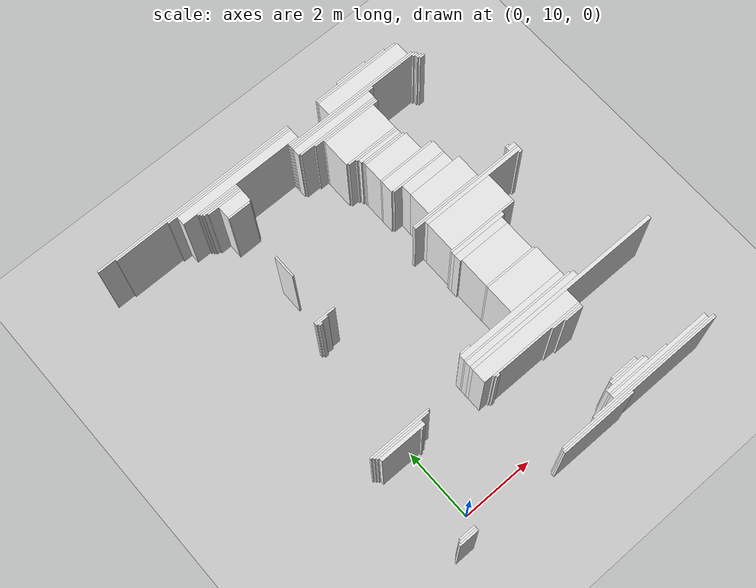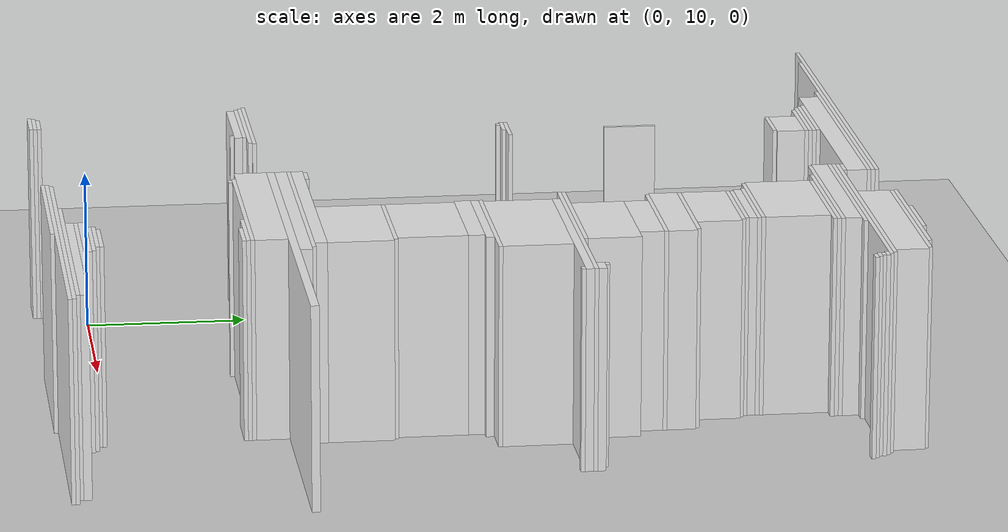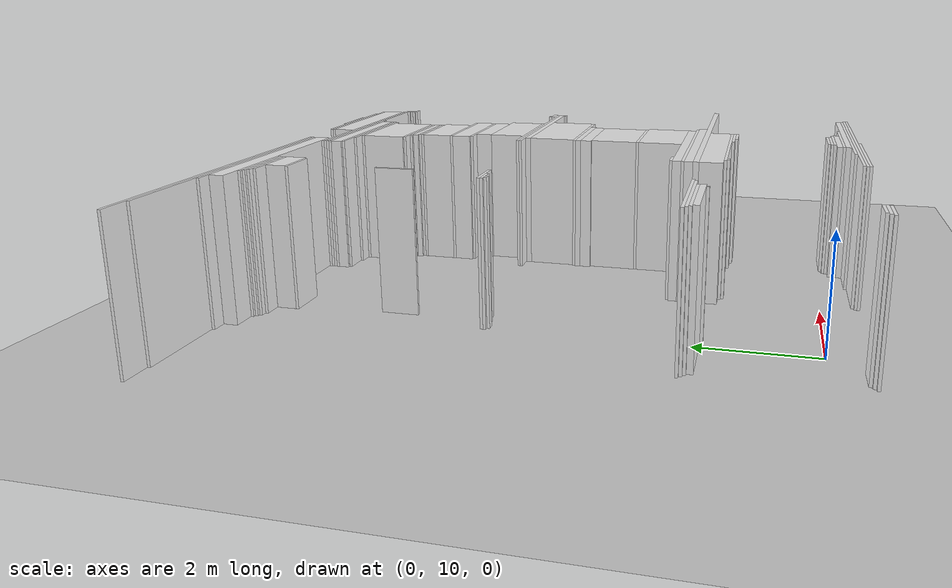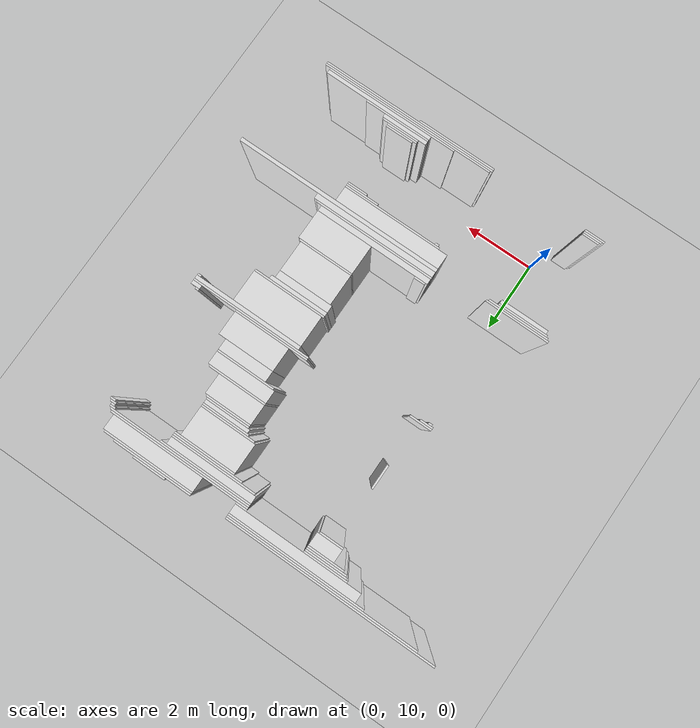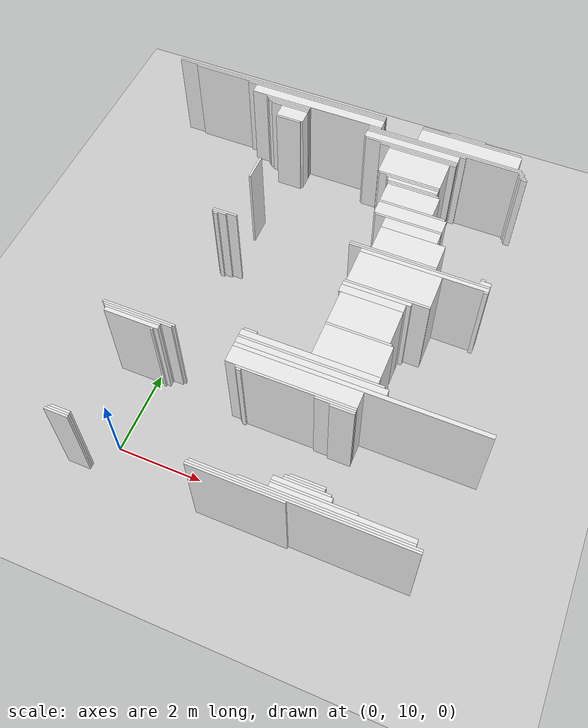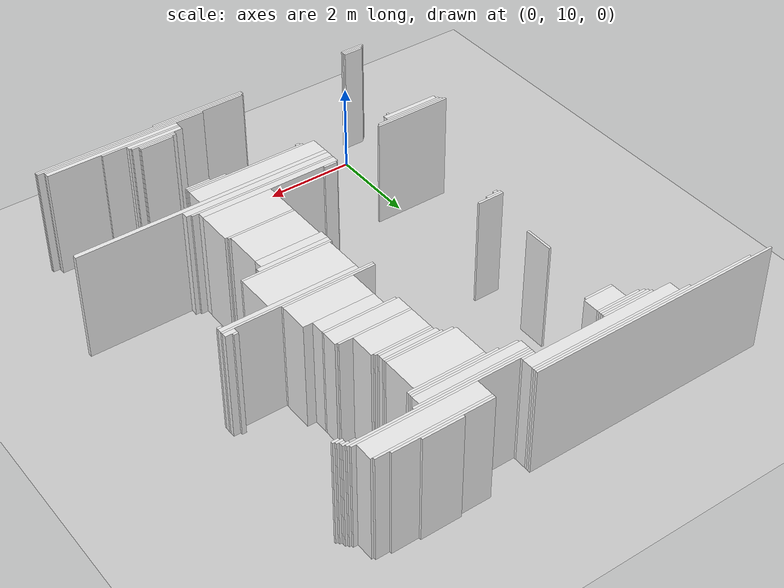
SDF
<sdf version="1.7">
 <world name="occupancy_map_world">
  <model name="ground_plane">
   <static>true</static>
   <link name="link">
    <collision name="collision">
     <geometry><plane><normal>0 0 1</normal><size>32.46 49.62000000000001</size></plane></geometry>
    </collision>
    <visual name="visual">
     <geometry><plane><normal>0 0 1</normal><size>32.46 49.62000000000001</size></plane></geometry>
     <material>
      <script><uri>file://media/materials/scripts/gazebo.material</uri><name>Gazebo/Grey</name></script>
     </material>
    </visual>
   </link>
  </model>
  <model name="wall_12">
   <static>true</static>
   <pose>4.825000000000003 19.75 1.25 0 0 0.0</pose>
   <link name="link">
    <collision name="collision"><geometry><box><size>0.9 0.05 2.5</size></box></geometry></collision>
    <visual name="visual">
     <geometry><box><size>0.9 0.05 2.5</size></box></geometry>
     <material>
      <script><uri>file://media/materials/scripts/gazebo.material</uri><name>Gazebo/White</name></script>
     </material>
    </visual>
   </link>
  </model>
  <model name="wall_14">
   <static>true</static>
   <pose>4.775000000000002 19.700000000000003 1.25 0 0 0.0</pose>
   <link name="link">
    <collision name="collision"><geometry><box><size>2.2 0.05 2.5</size></box></geometry></collision>
    <visual name="visual">
     <geometry><box><size>2.2 0.05 2.5</size></box></geometry>
     <material>
      <script><uri>file://media/materials/scripts/gazebo.material</uri><name>Gazebo/White</name></script>
     </material>
    </visual>
   </link>
  </model>
  <model name="wall_16">
   <static>true</static>
   <pose>-0.14999999999999858 19.650000000000006 1.25 0 0 0.0</pose>
   <link name="link">
    <collision name="collision"><geometry><box><size>5.75 0.05 2.5</size></box></geometry></collision>
    <visual name="visual">
     <geometry><box><size>5.75 0.05 2.5</size></box></geometry>
     <material>
      <script><uri>file://media/materials/scripts/gazebo.material</uri><name>Gazebo/White</name></script>
     </material>
    </visual>
   </link>
  </model>
  <model name="wall_17">
   <static>true</static>
   <pose>4.925000000000004 19.650000000000006 1.25 0 0 0.0</pose>
   <link name="link">
    <collision name="collision"><geometry><box><size>2.5 0.05 2.5</size></box></geometry></collision>
    <visual name="visual">
     <geometry><box><size>2.5 0.05 2.5</size></box></geometry>
     <material>
      <script><uri>file://media/materials/scripts/gazebo.material</uri><name>Gazebo/White</name></script>
     </material>
    </visual>
   </link>
  </model>
  <model name="wall_19">
   <static>true</static>
   <pose>0.10000000000000142 19.6 1.25 0 0 0.0</pose>
   <link name="link">
    <collision name="collision"><geometry><box><size>5.25 0.05 2.5</size></box></geometry></collision>
    <visual name="visual">
     <geometry><box><size>5.25 0.05 2.5</size></box></geometry>
     <material>
      <script><uri>file://media/materials/scripts/gazebo.material</uri><name>Gazebo/White</name></script>
     </material>
    </visual>
   </link>
  </model>
  <model name="wall_20">
   <static>true</static>
   <pose>4.950000000000003 19.425000000000004 1.25 0 0 0.0</pose>
   <link name="link">
    <collision name="collision">
     <geometry><box><size>2.5500000000000003 0.4 2.5</size></box></geometry>
    </collision>
    <visual name="visual">
     <geometry><box><size>2.5500000000000003 0.4 2.5</size></box></geometry>
     <material>
      <script><uri>file://media/materials/scripts/gazebo.material</uri><name>Gazebo/White</name></script>
     </material>
    </visual>
   </link>
  </model>
  <model name="wall_23">
   <static>true</static>
   <pose>0.8500000000000014 19.550000000000004 1.25 0 0 0.0</pose>
   <link name="link">
    <collision name="collision"><geometry><box><size>3.75 0.05 2.5</size></box></geometry></collision>
    <visual name="visual">
     <geometry><box><size>3.75 0.05 2.5</size></box></geometry>
     <material>
      <script><uri>file://media/materials/scripts/gazebo.material</uri><name>Gazebo/White</name></script>
     </material>
    </visual>
   </link>
  </model>
  <model name="wall_25">
   <static>true</static>
   <pose>0.9750000000000014 19.400000000000006 1.25 0 0 0.0</pose>
   <link name="link">
    <collision name="collision"><geometry><box><size>3.5 0.25 2.5</size></box></geometry></collision>
    <visual name="visual">
     <geometry><box><size>3.5 0.25 2.5</size></box></geometry>
     <material>
      <script><uri>file://media/materials/scripts/gazebo.material</uri><name>Gazebo/White</name></script>
     </material>
    </visual>
   </link>
  </model>
  <model name="wall_44">
   <static>true</static>
   <pose>0.22500000000000142 19.25 1.25 0 0 0.0</pose>
   <link name="link">
    <collision name="collision">
     <geometry><box><size>1.2000000000000002 0.05 2.5</size></box></geometry>
    </collision>
    <visual name="visual">
     <geometry><box><size>1.2000000000000002 0.05 2.5</size></box></geometry>
     <material>
      <script><uri>file://media/materials/scripts/gazebo.material</uri><name>Gazebo/White</name></script>
     </material>
    </visual>
   </link>
  </model>
  <model name="wall_45">
   <static>true</static>
   <pose>2.575000000000003 19.25 1.25 0 0 0.0</pose>
   <link name="link">
    <collision name="collision">
     <geometry><box><size>0.30000000000000004 0.05 2.5</size></box></geometry>
    </collision>
    <visual name="visual">
     <geometry><box><size>0.30000000000000004 0.05 2.5</size></box></geometry>
     <material>
      <script><uri>file://media/materials/scripts/gazebo.material</uri><name>Gazebo/White</name></script>
     </material>
    </visual>
   </link>
  </model>
  <model name="wall_47">
   <static>true</static>
   <pose>0.25000000000000355 19.200000000000003 1.25 0 0 0.0</pose>
   <link name="link">
    <collision name="collision">
     <geometry><box><size>1.1500000000000001 0.05 2.5</size></box></geometry>
    </collision>
    <visual name="visual">
     <geometry><box><size>1.1500000000000001 0.05 2.5</size></box></geometry>
     <material>
      <script><uri>file://media/materials/scripts/gazebo.material</uri><name>Gazebo/White</name></script>
     </material>
    </visual>
   </link>
  </model>
  <model name="wall_48">
   <static>true</static>
   <pose>4.3750000000000036 19.200000000000003 1.25 0 0 0.0</pose>
   <link name="link">
    <collision name="collision">
     <geometry><box><size>3.9000000000000004 0.05 2.5</size></box></geometry>
    </collision>
    <visual name="visual">
     <geometry><box><size>3.9000000000000004 0.05 2.5</size></box></geometry>
     <material>
      <script><uri>file://media/materials/scripts/gazebo.material</uri><name>Gazebo/White</name></script>
     </material>
    </visual>
   </link>
  </model>
  <model name="wall_50">
   <static>true</static>
   <pose>0.27500000000000213 19.150000000000006 1.25 0 0 0.0</pose>
   <link name="link">
    <collision name="collision"><geometry><box><size>1.1 0.05 2.5</size></box></geometry></collision>
    <visual name="visual">
     <geometry><box><size>1.1 0.05 2.5</size></box></geometry>
     <material>
      <script><uri>file://media/materials/scripts/gazebo.material</uri><name>Gazebo/White</name></script>
     </material>
    </visual>
   </link>
  </model>
  <model name="wall_51">
   <static>true</static>
   <pose>4.400000000000002 19.150000000000006 1.25 0 0 0.0</pose>
   <link name="link">
    <collision name="collision"><geometry><box><size>3.95 0.05 2.5</size></box></geometry></collision>
    <visual name="visual">
     <geometry><box><size>3.95 0.05 2.5</size></box></geometry>
     <material>
      <script><uri>file://media/materials/scripts/gazebo.material</uri><name>Gazebo/White</name></script>
     </material>
    </visual>
   </link>
  </model>
  <model name="wall_53">
   <static>true</static>
   <pose>0.32500000000000284 19.1 1.25 0 0 0.0</pose>
   <link name="link">
    <collision name="collision"><geometry><box><size>1.0 0.05 2.5</size></box></geometry></collision>
    <visual name="visual">
     <geometry><box><size>1.0 0.05 2.5</size></box></geometry>
     <material>
      <script><uri>file://media/materials/scripts/gazebo.material</uri><name>Gazebo/White</name></script>
     </material>
    </visual>
   </link>
  </model>
  <model name="wall_54">
   <static>true</static>
   <pose>3.700000000000003 19.1 1.25 0 0 0.0</pose>
   <link name="link">
    <collision name="collision">
     <geometry><box><size>2.5500000000000003 0.05 2.5</size></box></geometry>
    </collision>
    <visual name="visual">
     <geometry><box><size>2.5500000000000003 0.05 2.5</size></box></geometry>
     <material>
      <script><uri>file://media/materials/scripts/gazebo.material</uri><name>Gazebo/White</name></script>
     </material>
    </visual>
   </link>
  </model>
  <model name="wall_55">
   <static>true</static>
   <pose>6.350000000000001 19.1 1.25 0 0 0.0</pose>
   <link name="link">
    <collision name="collision">
     <geometry><box><size>0.15000000000000002 0.05 2.5</size></box></geometry>
    </collision>
    <visual name="visual">
     <geometry><box><size>0.15000000000000002 0.05 2.5</size></box></geometry>
     <material>
      <script><uri>file://media/materials/scripts/gazebo.material</uri><name>Gazebo/White</name></script>
     </material>
    </visual>
   </link>
  </model>
  <model name="wall_56">
   <static>true</static>
   <pose>0.4750000000000014 18.900000000000006 1.25 0 0 0.0</pose>
   <link name="link">
    <collision name="collision">
     <geometry><box><size>0.7000000000000001 0.35000000000000003 2.5</size></box></geometry>
    </collision>
    <visual name="visual">
     <geometry><box><size>0.7000000000000001 0.35000000000000003 2.5</size></box></geometry>
     <material>
      <script><uri>file://media/materials/scripts/gazebo.material</uri><name>Gazebo/White</name></script>
     </material>
    </visual>
   </link>
  </model>
  <model name="wall_57">
   <static>true</static>
   <pose>3.6250000000000036 18.975 1.25 0 0 0.0</pose>
   <link name="link">
    <collision name="collision">
     <geometry><box><size>2.4000000000000004 0.2 2.5</size></box></geometry>
    </collision>
    <visual name="visual">
     <geometry><box><size>2.4000000000000004 0.2 2.5</size></box></geometry>
     <material>
      <script><uri>file://media/materials/scripts/gazebo.material</uri><name>Gazebo/White</name></script>
     </material>
    </visual>
   </link>
  </model>
  <model name="wall_58">
   <static>true</static>
   <pose>6.3750000000000036 19.050000000000004 1.25 0 0 0.0</pose>
   <link name="link">
    <collision name="collision"><geometry><box><size>0.1 0.05 2.5</size></box></geometry></collision>
    <visual name="visual">
     <geometry><box><size>0.1 0.05 2.5</size></box></geometry>
     <material>
      <script><uri>file://media/materials/scripts/gazebo.material</uri><name>Gazebo/White</name></script>
     </material>
    </visual>
   </link>
  </model>
  <model name="wall_59">
   <static>true</static>
   <pose>6.3750000000000036 15.75 1.25 0 0 0.0</pose>
   <link name="link">
    <collision name="collision"><geometry><box><size>0.1 0.05 2.5</size></box></geometry></collision>
    <visual name="visual">
     <geometry><box><size>0.1 0.05 2.5</size></box></geometry>
     <material>
      <script><uri>file://media/materials/scripts/gazebo.material</uri><name>Gazebo/White</name></script>
     </material>
    </visual>
   </link>
  </model>
  <model name="wall_60">
   <static>true</static>
   <pose>6.400000000000002 19.0 1.25 0 0 0.0</pose>
   <link name="link">
    <collision name="collision">
     <geometry><box><size>0.15000000000000002 0.05 2.5</size></box></geometry>
    </collision>
    <visual name="visual">
     <geometry><box><size>0.15000000000000002 0.05 2.5</size></box></geometry>
     <material>
      <script><uri>file://media/materials/scripts/gazebo.material</uri><name>Gazebo/White</name></script>
     </material>
    </visual>
   </link>
  </model>
  <model name="wall_62">
   <static>true</static>
   <pose>6.450000000000003 18.950000000000003 1.25 0 0 0.0</pose>
   <link name="link">
    <collision name="collision">
     <geometry><box><size>0.15000000000000002 0.05 2.5</size></box></geometry>
    </collision>
    <visual name="visual">
     <geometry><box><size>0.15000000000000002 0.05 2.5</size></box></geometry>
     <material>
      <script><uri>file://media/materials/scripts/gazebo.material</uri><name>Gazebo/White</name></script>
     </material>
    </visual>
   </link>
  </model>
  <model name="wall_64">
   <static>true</static>
   <pose>3.650000000000002 18.85 1.25 0 0 0.0</pose>
   <link name="link">
    <collision name="collision"><geometry><box><size>2.35 0.05 2.5</size></box></geometry></collision>
    <visual name="visual">
     <geometry><box><size>2.35 0.05 2.5</size></box></geometry>
     <material>
      <script><uri>file://media/materials/scripts/gazebo.material</uri><name>Gazebo/White</name></script>
     </material>
    </visual>
   </link>
  </model>
  <model name="wall_66">
   <static>true</static>
   <pose>3.8500000000000014 18.800000000000004 1.25 0 0 0.0</pose>
   <link name="link">
    <collision name="collision">
     <geometry><box><size>1.9500000000000002 0.05 2.5</size></box></geometry>
    </collision>
    <visual name="visual">
     <geometry><box><size>1.9500000000000002 0.05 2.5</size></box></geometry>
     <material>
      <script><uri>file://media/materials/scripts/gazebo.material</uri><name>Gazebo/White</name></script>
     </material>
    </visual>
   </link>
  </model>
  <model name="wall_68">
   <static>true</static>
   <pose>3.9750000000000014 18.75 1.25 0 0 0.0</pose>
   <link name="link">
    <collision name="collision">
     <geometry><box><size>1.7000000000000002 0.05 2.5</size></box></geometry>
    </collision>
    <visual name="visual">
     <geometry><box><size>1.7000000000000002 0.05 2.5</size></box></geometry>
     <material>
      <script><uri>file://media/materials/scripts/gazebo.material</uri><name>Gazebo/White</name></script>
     </material>
    </visual>
   </link>
  </model>
  <model name="wall_70">
   <static>true</static>
   <pose>0.45000000000000284 18.700000000000003 1.25 0 0 0.0</pose>
   <link name="link">
    <collision name="collision"><geometry><box><size>0.65 0.05 2.5</size></box></geometry></collision>
    <visual name="visual">
     <geometry><box><size>0.65 0.05 2.5</size></box></geometry>
     <material>
      <script><uri>file://media/materials/scripts/gazebo.material</uri><name>Gazebo/White</name></script>
     </material>
    </visual>
   </link>
  </model>
  <model name="wall_71">
   <static>true</static>
   <pose>3.900000000000002 18.325000000000003 1.25 0 0 0.0</pose>
   <link name="link">
    <collision name="collision"><geometry><box><size>1.55 0.8 2.5</size></box></geometry></collision>
    <visual name="visual">
     <geometry><box><size>1.55 0.8 2.5</size></box></geometry>
     <material>
      <script><uri>file://media/materials/scripts/gazebo.material</uri><name>Gazebo/White</name></script>
     </material>
    </visual>
   </link>
  </model>
  <model name="wall_88">
   <static>true</static>
   <pose>3.9250000000000043 17.900000000000006 1.25 0 0 0.0</pose>
   <link name="link">
    <collision name="collision"><geometry><box><size>1.5 0.05 2.5</size></box></geometry></collision>
    <visual name="visual">
     <geometry><box><size>1.5 0.05 2.5</size></box></geometry>
     <material>
      <script><uri>file://media/materials/scripts/gazebo.material</uri><name>Gazebo/White</name></script>
     </material>
    </visual>
   </link>
  </model>
  <model name="wall_91">
   <static>true</static>
   <pose>4.025000000000002 17.85 1.25 0 0 0.0</pose>
   <link name="link">
    <collision name="collision"><geometry><box><size>1.3 0.05 2.5</size></box></geometry></collision>
    <visual name="visual">
     <geometry><box><size>1.3 0.05 2.5</size></box></geometry>
     <material>
      <script><uri>file://media/materials/scripts/gazebo.material</uri><name>Gazebo/White</name></script>
     </material>
    </visual>
   </link>
  </model>
  <model name="wall_92">
   <static>true</static>
   <pose>4.050000000000004 17.775000000000006 1.25 0 0 0.0</pose>
   <link name="link">
    <collision name="collision"><geometry><box><size>1.25 0.1 2.5</size></box></geometry></collision>
    <visual name="visual">
     <geometry><box><size>1.25 0.1 2.5</size></box></geometry>
     <material>
      <script><uri>file://media/materials/scripts/gazebo.material</uri><name>Gazebo/White</name></script>
     </material>
    </visual>
   </link>
  </model>
  <model name="wall_93">
   <static>true</static>
   <pose>4.075000000000003 17.700000000000003 1.25 0 0 0.0</pose>
   <link name="link">
    <collision name="collision">
     <geometry><box><size>1.2000000000000002 0.05 2.5</size></box></geometry>
    </collision>
    <visual name="visual">
     <geometry><box><size>1.2000000000000002 0.05 2.5</size></box></geometry>
     <material>
      <script><uri>file://media/materials/scripts/gazebo.material</uri><name>Gazebo/White</name></script>
     </material>
    </visual>
   </link>
  </model>
  <model name="wall_94">
   <static>true</static>
   <pose>4.100000000000001 17.650000000000006 1.25 0 0 0.0</pose>
   <link name="link">
    <collision name="collision"><geometry><box><size>1.25 0.05 2.5</size></box></geometry></collision>
    <visual name="visual">
     <geometry><box><size>1.25 0.05 2.5</size></box></geometry>
     <material>
      <script><uri>file://media/materials/scripts/gazebo.material</uri><name>Gazebo/White</name></script>
     </material>
    </visual>
   </link>
  </model>
  <model name="wall_96">
   <static>true</static>
   <pose>4.1250000000000036 17.35 1.25 0 0 0.0</pose>
   <link name="link">
    <collision name="collision"><geometry><box><size>1.3 0.55 2.5</size></box></geometry></collision>
    <visual name="visual">
     <geometry><box><size>1.3 0.55 2.5</size></box></geometry>
     <material>
      <script><uri>file://media/materials/scripts/gazebo.material</uri><name>Gazebo/White</name></script>
     </material>
    </visual>
   </link>
  </model>
  <model name="wall_100">
   <static>true</static>
   <pose>0.3500000000000014 16.9 1.25 0 0 0.0</pose>
   <link name="link">
    <collision name="collision"><geometry><box><size>0.05 0.65 2.5</size></box></geometry></collision>
    <visual name="visual">
     <geometry><box><size>0.05 0.65 2.5</size></box></geometry>
     <material>
      <script><uri>file://media/materials/scripts/gazebo.material</uri><name>Gazebo/White</name></script>
     </material>
    </visual>
   </link>
  </model>
  <model name="wall_104">
   <static>true</static>
   <pose>4.275000000000002 17.050000000000004 1.25 0 0 0.0</pose>
   <link name="link">
    <collision name="collision"><geometry><box><size>1.6 0.05 2.5</size></box></geometry></collision>
    <visual name="visual">
     <geometry><box><size>1.6 0.05 2.5</size></box></geometry>
     <material>
      <script><uri>file://media/materials/scripts/gazebo.material</uri><name>Gazebo/White</name></script>
     </material>
    </visual>
   </link>
  </model>
  <model name="wall_106">
   <static>true</static>
   <pose>4.300000000000004 16.85 1.25 0 0 0.0</pose>
   <link name="link">
    <collision name="collision">
     <geometry><box><size>1.6500000000000001 0.35000000000000003 2.5</size></box></geometry>
    </collision>
    <visual name="visual">
     <geometry><box><size>1.6500000000000001 0.35000000000000003 2.5</size></box></geometry>
     <material>
      <script><uri>file://media/materials/scripts/gazebo.material</uri><name>Gazebo/White</name></script>
     </material>
    </visual>
   </link>
  </model>
  <model name="wall_118">
   <static>true</static>
   <pose>4.325000000000003 16.65 1.25 0 0 0.0</pose>
   <link name="link">
    <collision name="collision"><geometry><box><size>1.6 0.05 2.5</size></box></geometry></collision>
    <visual name="visual">
     <geometry><box><size>1.6 0.05 2.5</size></box></geometry>
     <material>
      <script><uri>file://media/materials/scripts/gazebo.material</uri><name>Gazebo/White</name></script>
     </material>
    </visual>
   </link>
  </model>
  <model name="wall_119">
   <static>true</static>
   <pose>4.325000000000003 14.524999999999999 1.25 0 0 0.0</pose>
   <link name="link">
    <collision name="collision"><geometry><box><size>1.6 0.1 2.5</size></box></geometry></collision>
    <visual name="visual">
     <geometry><box><size>1.6 0.1 2.5</size></box></geometry>
     <material>
      <script><uri>file://media/materials/scripts/gazebo.material</uri><name>Gazebo/White</name></script>
     </material>
    </visual>
   </link>
  </model>
  <model name="wall_121">
   <static>true</static>
   <pose>4.450000000000003 16.475 1.25 0 0 0.0</pose>
   <link name="link">
    <collision name="collision">
     <geometry><box><size>1.35 0.30000000000000004 2.5</size></box></geometry>
    </collision>
    <visual name="visual">
     <geometry><box><size>1.35 0.30000000000000004 2.5</size></box></geometry>
     <material>
      <script><uri>file://media/materials/scripts/gazebo.material</uri><name>Gazebo/White</name></script>
     </material>
    </visual>
   </link>
  </model>
  <model name="wall_126">
   <static>true</static>
   <pose>4.550000000000004 16.0 1.25 0 0 0.0</pose>
   <link name="link">
    <collision name="collision"><geometry><box><size>1.55 0.65 2.5</size></box></geometry></collision>
    <visual name="visual">
     <geometry><box><size>1.55 0.65 2.5</size></box></geometry>
     <material>
      <script><uri>file://media/materials/scripts/gazebo.material</uri><name>Gazebo/White</name></script>
     </material>
    </visual>
   </link>
  </model>
  <model name="wall_133">
   <static>true</static>
   <pose>6.450000000000003 15.675000000000004 1.25 0 0 0.0</pose>
   <link name="link">
    <collision name="collision"><geometry><box><size>0.25 0.1 2.5</size></box></geometry></collision>
    <visual name="visual">
     <geometry><box><size>0.25 0.1 2.5</size></box></geometry>
     <material>
      <script><uri>file://media/materials/scripts/gazebo.material</uri><name>Gazebo/White</name></script>
     </material>
    </visual>
   </link>
  </model>
  <model name="wall_137">
   <static>true</static>
   <pose>4.300000000000004 15.649999999999999 1.25 0 0 0.0</pose>
   <link name="link">
    <collision name="collision">
     <geometry><box><size>2.0500000000000003 0.05 2.5</size></box></geometry>
    </collision>
    <visual name="visual">
     <geometry><box><size>2.0500000000000003 0.05 2.5</size></box></geometry>
     <material>
      <script><uri>file://media/materials/scripts/gazebo.material</uri><name>Gazebo/White</name></script>
     </material>
    </visual>
   </link>
  </model>
  <model name="wall_138">
   <static>true</static>
   <pose>4.925000000000004 15.600000000000001 1.25 0 0 0.0</pose>
   <link name="link">
    <collision name="collision">
     <geometry><box><size>3.3000000000000003 0.05 2.5</size></box></geometry>
    </collision>
    <visual name="visual">
     <geometry><box><size>3.3000000000000003 0.05 2.5</size></box></geometry>
     <material>
      <script><uri>file://media/materials/scripts/gazebo.material</uri><name>Gazebo/White</name></script>
     </material>
    </visual>
   </link>
  </model>
  <model name="wall_139">
   <static>true</static>
   <pose>5.075000000000003 15.524999999999999 1.25 0 0 0.0</pose>
   <link name="link">
    <collision name="collision"><geometry><box><size>3.0 0.1 2.5</size></box></geometry></collision>
    <visual name="visual">
     <geometry><box><size>3.0 0.1 2.5</size></box></geometry>
     <material>
      <script><uri>file://media/materials/scripts/gazebo.material</uri><name>Gazebo/White</name></script>
     </material>
    </visual>
   </link>
  </model>
  <model name="wall_141">
   <static>true</static>
   <pose>4.550000000000004 15.050000000000004 1.25 0 0 0.0</pose>
   <link name="link">
    <collision name="collision">
     <geometry><box><size>1.9500000000000002 0.8500000000000001 2.5</size></box></geometry>
    </collision>
    <visual name="visual">
     <geometry><box><size>1.9500000000000002 0.8500000000000001 2.5</size></box></geometry>
     <material>
      <script><uri>file://media/materials/scripts/gazebo.material</uri><name>Gazebo/White</name></script>
     </material>
    </visual>
   </link>
  </model>
  <model name="wall_142">
   <static>true</static>
   <pose>6.525000000000002 15.450000000000003 1.25 0 0 0.0</pose>
   <link name="link">
    <collision name="collision"><geometry><box><size>0.1 0.05 2.5</size></box></geometry></collision>
    <visual name="visual">
     <geometry><box><size>0.1 0.05 2.5</size></box></geometry>
     <material>
      <script><uri>file://media/materials/scripts/gazebo.material</uri><name>Gazebo/White</name></script>
     </material>
    </visual>
   </link>
  </model>
  <model name="wall_144">
   <static>true</static>
   <pose>0.27500000000000213 15.350000000000001 1.25 0 0 0.0</pose>
   <link name="link">
    <collision name="collision">
     <geometry><box><size>0.6000000000000001 0.05 2.5</size></box></geometry>
    </collision>
    <visual name="visual">
     <geometry><box><size>0.6000000000000001 0.05 2.5</size></box></geometry>
     <material>
      <script><uri>file://media/materials/scripts/gazebo.material</uri><name>Gazebo/White</name></script>
     </material>
    </visual>
   </link>
  </model>
  <model name="wall_146">
   <static>true</static>
   <pose>0.15000000000000213 15.300000000000004 1.25 0 0 0.0</pose>
   <link name="link">
    <collision name="collision">
     <geometry><box><size>0.35000000000000003 0.05 2.5</size></box></geometry>
    </collision>
    <visual name="visual">
     <geometry><box><size>0.35000000000000003 0.05 2.5</size></box></geometry>
     <material>
      <script><uri>file://media/materials/scripts/gazebo.material</uri><name>Gazebo/White</name></script>
     </material>
    </visual>
   </link>
  </model>
  <model name="wall_147">
   <static>true</static>
   <pose>0.07500000000000284 15.25 1.25 0 0 0.0</pose>
   <link name="link">
    <collision name="collision"><geometry><box><size>0.1 0.05 2.5</size></box></geometry></collision>
    <visual name="visual">
     <geometry><box><size>0.1 0.05 2.5</size></box></geometry>
     <material>
      <script><uri>file://media/materials/scripts/gazebo.material</uri><name>Gazebo/White</name></script>
     </material>
    </visual>
   </link>
  </model>
  <model name="wall_163">
   <static>true</static>
   <pose>4.525000000000002 14.600000000000001 1.25 0 0 0.0</pose>
   <link name="link">
    <collision name="collision"><geometry><box><size>2.0 0.05 2.5</size></box></geometry></collision>
    <visual name="visual">
     <geometry><box><size>2.0 0.05 2.5</size></box></geometry>
     <material>
      <script><uri>file://media/materials/scripts/gazebo.material</uri><name>Gazebo/White</name></script>
     </material>
    </visual>
   </link>
  </model>
  <model name="wall_169">
   <static>true</static>
   <pose>4.275000000000002 14.375 1.25 0 0 0.0</pose>
   <link name="link">
    <collision name="collision"><geometry><box><size>1.5 0.2 2.5</size></box></geometry></collision>
    <visual name="visual">
     <geometry><box><size>1.5 0.2 2.5</size></box></geometry>
     <material>
      <script><uri>file://media/materials/scripts/gazebo.material</uri><name>Gazebo/White</name></script>
     </material>
    </visual>
   </link>
  </model>
  <model name="wall_171">
   <static>true</static>
   <pose>4.300000000000004 13.850000000000001 1.25 0 0 0.0</pose>
   <link name="link">
    <collision name="collision">
     <geometry><box><size>1.4500000000000002 0.8500000000000001 2.5</size></box></geometry>
    </collision>
    <visual name="visual">
     <geometry><box><size>1.4500000000000002 0.8500000000000001 2.5</size></box></geometry>
     <material>
      <script><uri>file://media/materials/scripts/gazebo.material</uri><name>Gazebo/White</name></script>
     </material>
    </visual>
   </link>
  </model>
  <model name="wall_184">
   <static>true</static>
   <pose>4.325000000000003 13.399999999999999 1.25 0 0 0.0</pose>
   <link name="link">
    <collision name="collision"><geometry><box><size>1.5 0.05 2.5</size></box></geometry></collision>
    <visual name="visual">
     <geometry><box><size>1.5 0.05 2.5</size></box></geometry>
     <material>
      <script><uri>file://media/materials/scripts/gazebo.material</uri><name>Gazebo/White</name></script>
     </material>
    </visual>
   </link>
  </model>
  <model name="wall_186">
   <static>true</static>
   <pose>4.350000000000001 12.975000000000001 1.25 0 0 0.0</pose>
   <link name="link">
    <collision name="collision"><geometry><box><size>1.55 0.8 2.5</size></box></geometry></collision>
    <visual name="visual">
     <geometry><box><size>1.55 0.8 2.5</size></box></geometry>
     <material>
      <script><uri>file://media/materials/scripts/gazebo.material</uri><name>Gazebo/White</name></script>
     </material>
    </visual>
   </link>
  </model>
  <model name="wall_199">
   <static>true</static>
   <pose>2.1750000000000043 12.600000000000001 1.25 0 0 0.0</pose>
   <link name="link">
    <collision name="collision">
     <geometry><box><size>0.30000000000000004 0.05 2.5</size></box></geometry>
    </collision>
    <visual name="visual">
     <geometry><box><size>0.30000000000000004 0.05 2.5</size></box></geometry>
     <material>
      <script><uri>file://media/materials/scripts/gazebo.material</uri><name>Gazebo/White</name></script>
     </material>
    </visual>
   </link>
  </model>
  <model name="wall_200">
   <static>true</static>
   <pose>3.5500000000000043 12.5 1.25 0 0 0.0</pose>
   <link name="link">
    <collision name="collision">
     <geometry><box><size>3.1500000000000004 0.15000000000000002 2.5</size></box></geometry>
    </collision>
    <visual name="visual">
     <geometry><box><size>3.1500000000000004 0.15000000000000002 2.5</size></box></geometry>
     <material>
      <script><uri>file://media/materials/scripts/gazebo.material</uri><name>Gazebo/White</name></script>
     </material>
    </visual>
   </link>
  </model>
  <model name="wall_201">
   <static>true</static>
   <pose>3.6250000000000036 12.399999999999999 1.25 0 0 0.0</pose>
   <link name="link">
    <collision name="collision">
     <geometry><box><size>3.3000000000000003 0.05 2.5</size></box></geometry>
    </collision>
    <visual name="visual">
     <geometry><box><size>3.3000000000000003 0.05 2.5</size></box></geometry>
     <material>
      <script><uri>file://media/materials/scripts/gazebo.material</uri><name>Gazebo/White</name></script>
     </material>
    </visual>
   </link>
  </model>
  <model name="wall_203">
   <static>true</static>
   <pose>3.6750000000000043 12.300000000000004 1.25 0 0 0.0</pose>
   <link name="link">
    <collision name="collision">
     <geometry><box><size>3.4000000000000004 0.15000000000000002 2.5</size></box></geometry>
    </collision>
    <visual name="visual">
     <geometry><box><size>3.4000000000000004 0.15000000000000002 2.5</size></box></geometry>
     <material>
      <script><uri>file://media/materials/scripts/gazebo.material</uri><name>Gazebo/White</name></script>
     </material>
    </visual>
   </link>
  </model>
  <model name="wall_206">
   <static>true</static>
   <pose>4.825000000000003 12.175000000000004 1.25 0 0 0.0</pose>
   <link name="link">
    <collision name="collision"><geometry><box><size>5.7 0.1 2.5</size></box></geometry></collision>
    <visual name="visual">
     <geometry><box><size>5.7 0.1 2.5</size></box></geometry>
     <material>
      <script><uri>file://media/materials/scripts/gazebo.material</uri><name>Gazebo/White</name></script>
     </material>
    </visual>
   </link>
  </model>
  <model name="wall_210">
   <static>true</static>
   <pose>-0.24999999999999645 12.100000000000001 1.25 0 0 0.0</pose>
   <link name="link">
    <collision name="collision"><geometry><box><size>1.75 0.05 2.5</size></box></geometry></collision>
    <visual name="visual">
     <geometry><box><size>1.75 0.05 2.5</size></box></geometry>
     <material>
      <script><uri>file://media/materials/scripts/gazebo.material</uri><name>Gazebo/White</name></script>
     </material>
    </visual>
   </link>
  </model>
  <model name="wall_211">
   <static>true</static>
   <pose>3.450000000000003 11.925000000000004 1.25 0 0 0.0</pose>
   <link name="link">
    <collision name="collision"><geometry><box><size>2.95 0.4 2.5</size></box></geometry></collision>
    <visual name="visual">
     <geometry><box><size>2.95 0.4 2.5</size></box></geometry>
     <material>
      <script><uri>file://media/materials/scripts/gazebo.material</uri><name>Gazebo/White</name></script>
     </material>
    </visual>
   </link>
  </model>
  <model name="wall_214">
   <static>true</static>
   <pose>-0.24999999999999645 12.050000000000004 1.25 0 0 0.0</pose>
   <link name="link">
    <collision name="collision">
     <geometry><box><size>1.6500000000000001 0.05 2.5</size></box></geometry>
    </collision>
    <visual name="visual">
     <geometry><box><size>1.6500000000000001 0.05 2.5</size></box></geometry>
     <material>
      <script><uri>file://media/materials/scripts/gazebo.material</uri><name>Gazebo/White</name></script>
     </material>
    </visual>
   </link>
  </model>
  <model name="wall_218">
   <static>true</static>
   <pose>-0.34999999999999787 12.0 1.25 0 0 0.0</pose>
   <link name="link">
    <collision name="collision"><geometry><box><size>1.35 0.05 2.5</size></box></geometry></collision>
    <visual name="visual">
     <geometry><box><size>1.35 0.05 2.5</size></box></geometry>
     <material>
      <script><uri>file://media/materials/scripts/gazebo.material</uri><name>Gazebo/White</name></script>
     </material>
    </visual>
   </link>
  </model>
  <model name="wall_220">
   <static>true</static>
   <pose>-0.3249999999999993 11.925000000000004 1.25 0 0 0.0</pose>
   <link name="link">
    <collision name="collision"><geometry><box><size>1.3 0.1 2.5</size></box></geometry></collision>
    <visual name="visual">
     <geometry><box><size>1.3 0.1 2.5</size></box></geometry>
     <material>
      <script><uri>file://media/materials/scripts/gazebo.material</uri><name>Gazebo/White</name></script>
     </material>
    </visual>
   </link>
  </model>
  <model name="wall_223">
   <static>true</static>
   <pose>0.20000000000000284 11.850000000000001 1.25 0 0 0.0</pose>
   <link name="link">
    <collision name="collision"><geometry><box><size>0.05 0.05 2.5</size></box></geometry></collision>
    <visual name="visual">
     <geometry><box><size>0.05 0.05 2.5</size></box></geometry>
     <material>
      <script><uri>file://media/materials/scripts/gazebo.material</uri><name>Gazebo/White</name></script>
     </material>
    </visual>
   </link>
  </model>
  <model name="wall_231">
   <static>true</static>
   <pose>3.575000000000003 11.700000000000003 1.25 0 0 0.0</pose>
   <link name="link">
    <collision name="collision"><geometry><box><size>2.7 0.05 2.5</size></box></geometry></collision>
    <visual name="visual">
     <geometry><box><size>2.7 0.05 2.5</size></box></geometry>
     <material>
      <script><uri>file://media/materials/scripts/gazebo.material</uri><name>Gazebo/White</name></script>
     </material>
    </visual>
   </link>
  </model>
  <model name="wall_234">
   <static>true</static>
   <pose>2.325000000000003 11.649999999999999 1.25 0 0 0.0</pose>
   <link name="link">
    <collision name="collision"><geometry><box><size>0.1 0.05 2.5</size></box></geometry></collision>
    <visual name="visual">
     <geometry><box><size>0.1 0.05 2.5</size></box></geometry>
     <material>
      <script><uri>file://media/materials/scripts/gazebo.material</uri><name>Gazebo/White</name></script>
     </material>
    </visual>
   </link>
  </model>
  <model name="wall_235">
   <static>true</static>
   <pose>4.475000000000001 11.649999999999999 1.25 0 0 0.0</pose>
   <link name="link">
    <collision name="collision"><geometry><box><size>0.9 0.05 2.5</size></box></geometry></collision>
    <visual name="visual">
     <geometry><box><size>0.9 0.05 2.5</size></box></geometry>
     <material>
      <script><uri>file://media/materials/scripts/gazebo.material</uri><name>Gazebo/White</name></script>
     </material>
    </visual>
   </link>
  </model>
  <model name="wall_237">
   <static>true</static>
   <pose>4.650000000000002 11.600000000000001 1.25 0 0 0.0</pose>
   <link name="link">
    <collision name="collision"><geometry><box><size>0.55 0.05 2.5</size></box></geometry></collision>
    <visual name="visual">
     <geometry><box><size>0.55 0.05 2.5</size></box></geometry>
     <material>
      <script><uri>file://media/materials/scripts/gazebo.material</uri><name>Gazebo/White</name></script>
     </material>
    </visual>
   </link>
  </model>
  <model name="wall_254">
   <static>true</static>
   <pose>4.600000000000001 9.900000000000002 1.25 0 0 0.0</pose>
   <link name="link">
    <collision name="collision"><geometry><box><size>0.75 0.05 2.5</size></box></geometry></collision>
    <visual name="visual">
     <geometry><box><size>0.75 0.05 2.5</size></box></geometry>
     <material>
      <script><uri>file://media/materials/scripts/gazebo.material</uri><name>Gazebo/White</name></script>
     </material>
    </visual>
   </link>
  </model>
  <model name="wall_256">
   <static>true</static>
   <pose>4.550000000000004 9.850000000000001 1.25 0 0 0.0</pose>
   <link name="link">
    <collision name="collision">
     <geometry><box><size>0.8500000000000001 0.05 2.5</size></box></geometry>
    </collision>
    <visual name="visual">
     <geometry><box><size>0.8500000000000001 0.05 2.5</size></box></geometry>
     <material>
      <script><uri>file://media/materials/scripts/gazebo.material</uri><name>Gazebo/White</name></script>
     </material>
    </visual>
   </link>
  </model>
  <model name="wall_259">
   <static>true</static>
   <pose>4.6250000000000036 9.8 1.25 0 0 0.0</pose>
   <link name="link">
    <collision name="collision"><geometry><box><size>1.0 0.05 2.5</size></box></geometry></collision>
    <visual name="visual">
     <geometry><box><size>1.0 0.05 2.5</size></box></geometry>
     <material>
      <script><uri>file://media/materials/scripts/gazebo.material</uri><name>Gazebo/White</name></script>
     </material>
    </visual>
   </link>
  </model>
  <model name="wall_261">
   <static>true</static>
   <pose>4.550000000000004 9.725000000000001 1.25 0 0 0.0</pose>
   <link name="link">
    <collision name="collision"><geometry><box><size>1.25 0.1 2.5</size></box></geometry></collision>
    <visual name="visual">
     <geometry><box><size>1.25 0.1 2.5</size></box></geometry>
     <material>
      <script><uri>file://media/materials/scripts/gazebo.material</uri><name>Gazebo/White</name></script>
     </material>
    </visual>
   </link>
  </model>
  <model name="wall_266">
   <static>true</static>
   <pose>4.825000000000003 9.650000000000002 1.25 0 0 0.0</pose>
   <link name="link">
    <collision name="collision"><geometry><box><size>1.8 0.05 2.5</size></box></geometry></collision>
    <visual name="visual">
     <geometry><box><size>1.8 0.05 2.5</size></box></geometry>
     <material>
      <script><uri>file://media/materials/scripts/gazebo.material</uri><name>Gazebo/White</name></script>
     </material>
    </visual>
   </link>
  </model>
  <model name="wall_268">
   <static>true</static>
   <pose>5.425000000000004 9.575000000000003 1.25 0 0 0.0</pose>
   <link name="link">
    <collision name="collision"><geometry><box><size>3.0 0.1 2.5</size></box></geometry></collision>
    <visual name="visual">
     <geometry><box><size>3.0 0.1 2.5</size></box></geometry>
     <material>
      <script><uri>file://media/materials/scripts/gazebo.material</uri><name>Gazebo/White</name></script>
     </material>
    </visual>
   </link>
  </model>
  <model name="wall_269">
   <static>true</static>
   <pose>5.100000000000001 9.5 1.25 0 0 0.0</pose>
   <link name="link">
    <collision name="collision">
     <geometry><box><size>3.6500000000000004 0.05 2.5</size></box></geometry>
    </collision>
    <visual name="visual">
     <geometry><box><size>3.6500000000000004 0.05 2.5</size></box></geometry>
     <material>
      <script><uri>file://media/materials/scripts/gazebo.material</uri><name>Gazebo/White</name></script>
     </material>
    </visual>
   </link>
  </model>
  <model name="wall_270">
   <static>true</static>
   <pose>-0.5999999999999979 9.450000000000003 1.25 0 0 0.0</pose>
   <link name="link">
    <collision name="collision"><geometry><box><size>0.45 0.05 2.5</size></box></geometry></collision>
    <visual name="visual">
     <geometry><box><size>0.45 0.05 2.5</size></box></geometry>
     <material>
      <script><uri>file://media/materials/scripts/gazebo.material</uri><name>Gazebo/White</name></script>
     </material>
    </visual>
   </link>
  </model>
  <model name="wall_271">
   <static>true</static>
   <pose>4.675000000000004 9.450000000000003 1.25 0 0 0.0</pose>
   <link name="link">
    <collision name="collision">
     <geometry><box><size>4.800000000000001 0.05 2.5</size></box></geometry>
    </collision>
    <visual name="visual">
     <geometry><box><size>4.800000000000001 0.05 2.5</size></box></geometry>
     <material>
      <script><uri>file://media/materials/scripts/gazebo.material</uri><name>Gazebo/White</name></script>
     </material>
    </visual>
   </link>
  </model>
  <model name="wall_272">
   <static>true</static>
   <pose>-0.6249999999999964 9.400000000000002 1.25 0 0 0.0</pose>
   <link name="link">
    <collision name="collision"><geometry><box><size>0.5 0.05 2.5</size></box></geometry></collision>
    <visual name="visual">
     <geometry><box><size>0.5 0.05 2.5</size></box></geometry>
     <material>
      <script><uri>file://media/materials/scripts/gazebo.material</uri><name>Gazebo/White</name></script>
     </material>
    </visual>
   </link>
  </model>
  <model name="wall_273">
   <static>true</static>
   <pose>4.650000000000002 9.400000000000002 1.25 0 0 0.0</pose>
   <link name="link">
    <collision name="collision">
     <geometry><box><size>4.8500000000000005 0.05 2.5</size></box></geometry>
    </collision>
    <visual name="visual">
     <geometry><box><size>4.8500000000000005 0.05 2.5</size></box></geometry>
     <material>
      <script><uri>file://media/materials/scripts/gazebo.material</uri><name>Gazebo/White</name></script>
     </material>
    </visual>
   </link>
  </model>
  <model name="wall_274">
   <static>true</static>
   <pose>-0.6499999999999986 9.350000000000001 1.25 0 0 0.0</pose>
   <link name="link">
    <collision name="collision"><geometry><box><size>0.55 0.05 2.5</size></box></geometry></collision>
    <visual name="visual">
     <geometry><box><size>0.55 0.05 2.5</size></box></geometry>
     <material>
      <script><uri>file://media/materials/scripts/gazebo.material</uri><name>Gazebo/White</name></script>
     </material>
    </visual>
   </link>
  </model>
  <model name="wall_275">
   <static>true</static>
   <pose>3.3000000000000043 9.350000000000001 1.25 0 0 0.0</pose>
   <link name="link">
    <collision name="collision"><geometry><box><size>2.15 0.05 2.5</size></box></geometry></collision>
    <visual name="visual">
     <geometry><box><size>2.15 0.05 2.5</size></box></geometry>
     <material>
      <script><uri>file://media/materials/scripts/gazebo.material</uri><name>Gazebo/White</name></script>
     </material>
    </visual>
   </link>
  </model>
  <model name="wall_743">
   <static>true</static>
   <pose>0.20000000000000284 11.850000000000001 1.25 0 0 0.0</pose>
   <link name="link">
    <collision name="collision"><geometry><box><size>0.05 0.05 2.5</size></box></geometry></collision>
    <visual name="visual">
     <geometry><box><size>0.05 0.05 2.5</size></box></geometry>
     <material>
      <script><uri>file://media/materials/scripts/gazebo.material</uri><name>Gazebo/White</name></script>
     </material>
    </visual>
   </link>
  </model>
  <model name="wall_744">
   <static>true</static>
   <pose>0.3500000000000014 16.9 1.25 0 0 0.0</pose>
   <link name="link">
    <collision name="collision"><geometry><box><size>0.05 0.65 2.5</size></box></geometry></collision>
    <visual name="visual">
     <geometry><box><size>0.05 0.65 2.5</size></box></geometry>
     <material>
      <script><uri>file://media/materials/scripts/gazebo.material</uri><name>Gazebo/White</name></script>
     </material>
    </visual>
   </link>
  </model>
 </world>
</sdf>
